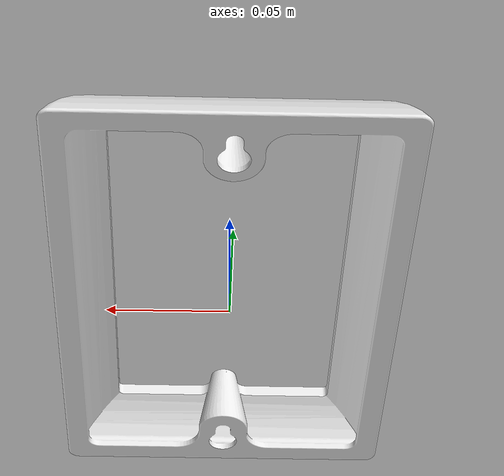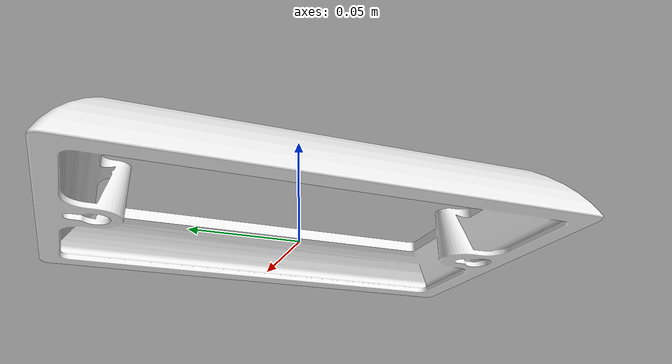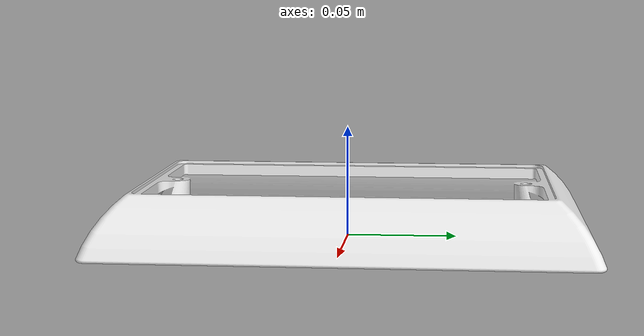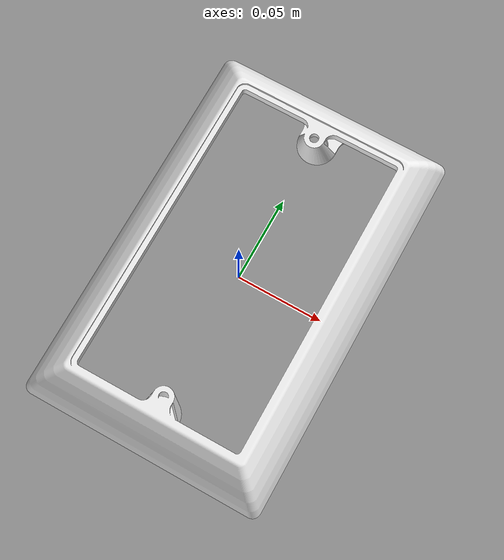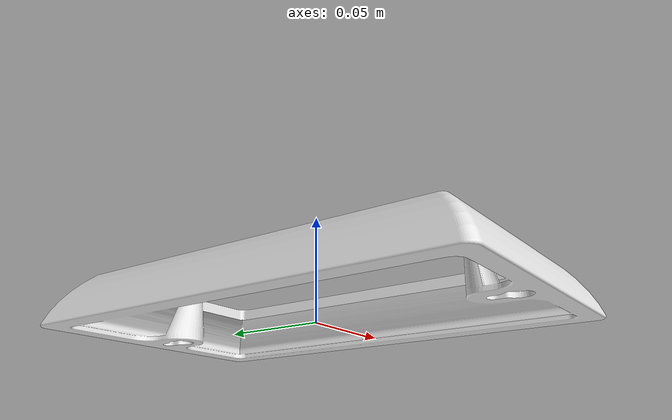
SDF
<?xml version="1.0" ?>
<sdf version="1.5">
  <model name="Moldura_final">
    <static>false</static>
    <link name="Moldura_final_link">

      <collision name="collision">
        <geometry>
          <mesh>
            <uri>model://moldura_final/meshes/moldura_final.dae</uri>
            <scale>1.0 1.0 1.0</scale>
          </mesh>
        </geometry>
      </collision>

      <visual name="visual">
        <geometry>
          <mesh>
            <uri>model://moldura_final/meshes/moldura_final.dae</uri>
            <scale>1.0 1.0 1.0</scale>
          </mesh>
        </geometry>
        <material>
          <script>
            <uri>file://media/materials/scripts/gazebo.material</uri>
            <name>Gazebo/White</name>
          </script>
        </material>
      </visual>

      <inertial>
        <pose>0.000779 0.001330 0.012974 0 0 0</pose>
        <mass>0.40</mass>
        <inertia>
          <!-- | ixx ixy ixz |
          | ixy iyy iyz |
          | ixz iyz izz | -->

          <ixx>0.000001</ixx>
          <ixy>0.0</ixy>
          <ixz>0.0</ixz>
          <iyy>0.0</iyy>
          <iyz>0.0</iyz>
          <izz>0.000001</izz>
        </inertia>
      </inertial>

    </link>
  </model>
</sdf>
